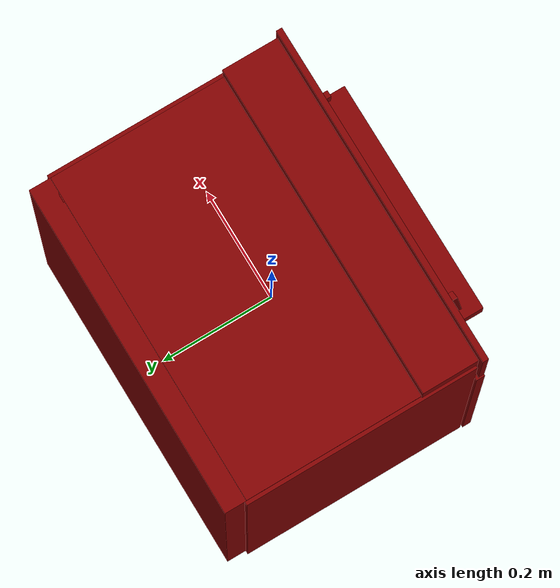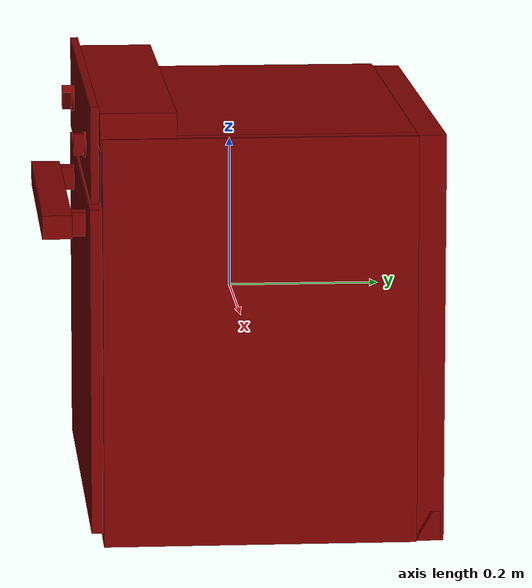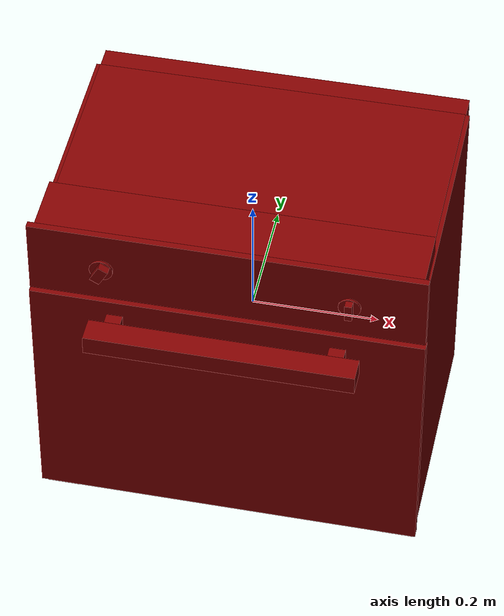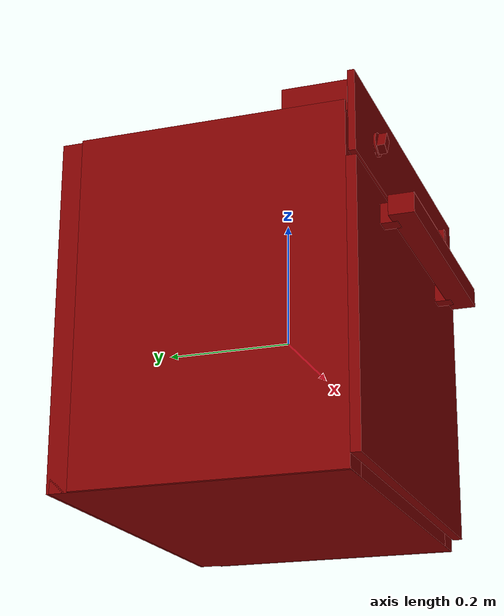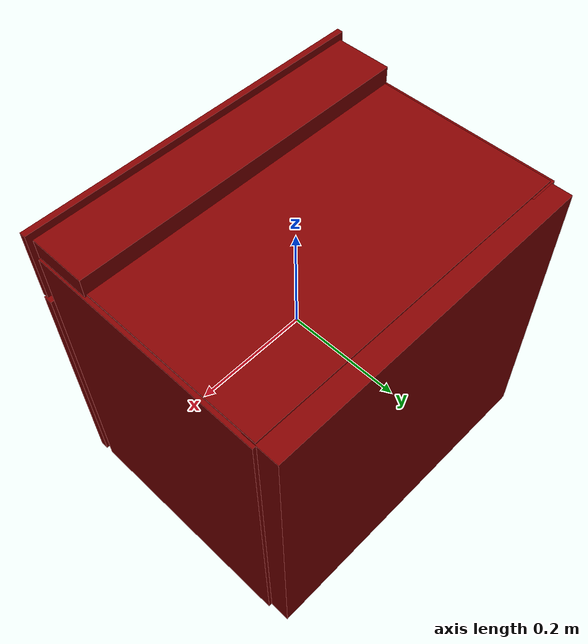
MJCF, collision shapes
<mujoco model="model">
  <compiler angle="radian"/>
  <asset>
    <mesh file="visuals/Body001.obj" name="Body001_vis"/>
    <mesh file="visuals/Door001.obj" name="Door001_vis"/>
    <mesh file="visuals/Door001_Clear.obj" name="Door001_Clear_vis"/>
    <mesh file="visuals/Knob001.obj" name="Knob001_vis"/>
    <mesh file="visuals/Knob002.obj" name="Knob002_vis"/>
    <mesh file="visuals/Shelf001.obj" name="Shelf001_vis"/>
    <texture file="visuals/T_BC001.png" name="Body001_material" type="2d"/>
    <material name="Body001_material" rgba="1 1 1 1.0" texture="Body001_material" shininess="0.4472135901451111" specular="0.3103448502657381"/>
    <texture file="visuals/T_BC001.png" name="Door001_material" type="2d"/>
    <material name="Door001_material" rgba="1 1 1 1.0" texture="Door001_material" shininess="0.4472135901451111" specular="0.3103448502657381"/>
    <texture file="visuals/T_BC001.png" name="Door001_Clear_material" type="2d"/>
    <material name="Door001_Clear_material" rgba="1 1 1 0.7999999523162842" texture="Door001_Clear_material" shininess="0.4472135901451111" specular="0.3103448502657381"/>
    <texture file="visuals/T_BC001.png" name="Knob001_material" type="2d"/>
    <material name="Knob001_material" rgba="1 1 1 1.0" texture="Knob001_material" shininess="0.4472135901451111" specular="0.3103448502657381"/>
    <texture file="visuals/T_BC001.png" name="Knob002_material" type="2d"/>
    <material name="Knob002_material" rgba="1 1 1 1.0" texture="Knob002_material" shininess="0.4472135901451111" specular="0.3103448502657381"/>
    <texture file="visuals/T_BC001.png" name="Shelf001_material" type="2d"/>
    <material name="Shelf001_material" rgba="1 1 1 1.0" texture="Shelf001_material" shininess="0.4472135901451111" specular="0.3103448502657381"/>
  </asset>
  <default>
    <default class="visual">
      <geom conaffinity="0" contype="0" group="1" type="mesh"/>
    </default>
    <default class="collision">
      <geom group="0" rgba="0.5 0 0 0.5"/>
    </default>
    <default class="spawn">
      <geom group="0" rgba="1 1 1 0.5" contype="0" conaffinity="0"/>
      <site group="0" rgba="1 1 1 0.5"/>
    </default>
    <default class="region">
      <geom group="1" conaffinity="0" contype="0" rgba="0 1 0 0"/>
    </default>
  </default>
  <worldbody>
    <body>
      <body name="object">
        <geom mesh="Body001_vis" type="mesh" solimp="0.998 0.998 0.001" solref="0.001 1" density="100" friction="0.95 0.3 0.1" class="visual" material="Body001_material"/>
        <geom class="collision" type="box" pos="-0.0001150821044575423 0.035174883902072906 -0.26660239696502686" size="0.29171276092529297 0.2194117158651352 0.019484931603074074" quat="1.0 0.0 0.0 0.0"/>
        <geom class="collision" type="box" pos="0.0003415074315853417 -0.1378789097070694 0.2592494785785675" size="0.29411524534225464 0.04925039783120155 0.024248898029327393" quat="1.0 0.0 0.0 0.0"/>
        <geom class="collision" type="box" pos="0.2725883424282074 0.019312120974063873 -0.017896898090839386" size="0.02493990957736969 0.20375710725784302 0.26818951964378357" quat="1.0 0.0 0.0 0.0"/>
        <geom class="collision" type="box" pos="-0.0001150821044575423 0.2286190390586853 -0.017896898090839386" size="0.2917129397392273 0.030203869566321373 0.26818957924842834" quat="1.0 0.0 0.0 0.0"/>
        <geom class="collision" type="box" pos="-0.27295947074890137 0.019759636372327805 -0.017896898090839386" size="0.025413034483790398 0.20433248579502106 0.2681896388530731" quat="1.0 0.0 0.0 0.0"/>
        <geom class="collision" type="box" pos="0.0007347097853198647 -0.19475600123405457 0.2309303730726242" size="0.3016512095928192 0.0051789721474051476 0.06286300718784332" quat="1.0 0.0 0.0 0.0"/>
        <geom class="collision" type="box" pos="-0.000563634792342782 0.06301185488700867 0.24423527717590332" size="0.29126429557800293 0.1580100655555725 0.009234687313437462" quat="1.0 0.0 0.0 0.0"/>
        <geom class="collision" type="box" pos="-0.000563634792342782 0.02014992944896221 0.18133759498596191" size="0.29126429557800293 0.20087198913097382 0.05729734152555466" quat="1.0 0.0 0.0 0.0"/>
        <geom class="collision" type="box" pos="-0.2601841986179352 0.019759636372327805 -0.0775279551744461" size="0.018690381199121475 0.20433248579502106 0.007204629946500063" quat="1.0 0.0 0.0 0.0"/>
        <geom class="collision" type="box" pos="0.26071929931640625 0.019759636372327805 -0.0775279551744461" size="0.018690381199121475 0.20433248579502106 0.007204629946500063" quat="1.0 0.0 0.0 0.0"/>
        <body name="Door001">
          <joint axis="1.0 0.0 0.0" pos="-4.627989255823195e-06 -0.19747281074523926 -0.2802807688713074" limited="true" name="Door001_joint" range="0.0 1.15" type="hinge" damping="5" frictionloss="1" armature=".01" stiffness="0.05"/>
          <geom mesh="Door001_vis" type="mesh" solimp="0.998 0.998 0.001" solref="0.001 1" density="100" friction="0.95 0.3 0.1" class="visual" material="Door001_material"/>
          <geom class="collision" type="box" pos="-1.234002411365509e-08 -0.19337597489356995 -0.05289773643016815" size="0.3026793897151947 0.00757393566891551 0.2130080908536911" quat="1.0 0.0 0.0 0.0"/>
          <geom class="collision" type="box" pos="0.0008096892852336168 -0.17589324712753296 -0.06381361931562424" size="0.23558706045150757 0.015448582358658314 0.1573600023984909" quat="1.0 0.0 0.0 0.0"/>
          <geom class="collision" type="box" pos="-0.1706220656633377 -0.21485750377178192 0.11951620131731033" size="0.012437061406672001 0.012890075333416462 0.015612439252436161" quat="1.0 0.0 0.0 0.0"/>
          <geom class="collision" type="box" pos="0.00021028536139056087 -0.23928269743919373 0.12017980217933655" size="0.2072979062795639 0.01943608559668064 0.015612459741532803" quat="1.0 0.0 0.0 0.0"/>
          <geom class="collision" type="box" pos="0.17107003927230835 -0.21485750377178192 0.11951620131731033" size="0.012437081895768642 0.01289011538028717 0.01561247929930687" quat="1.0 0.0 0.0 0.0"/>
          <body name="Door001_Clear">
            <geom mesh="Door001_Clear_vis" type="mesh" solimp="0.998 0.998 0.001" solref="0.001 1" density="100" friction="0.95 0.3 0.1" class="visual" material="Door001_Clear_material"/>
            <geom class="collision" type="box" pos="-0.0001150821044575423 -0.1777002215385437 -0.06398564577102661" size="0.16974835097789764 0.02312706783413887 0.11725851148366928" quat="1.0 0.0 0.0 0.0"/>
          </body>
        </body>
        <body name="Knob001">
          <joint axis="0.0 1.0 0.0" pos="-0.1890895515680313 -0.20617784559726715 0.22815538942813873" limited="true" name="Knob001_joint" range="0.0 5.061454830783556" type="hinge" damping="0.05" armature="0.001"/>
          <geom mesh="Knob001_vis" type="mesh" solimp="0.998 0.998 0.001" solref="0.001 1" density="100" friction="0.95 0.3 0.1" class="visual" material="Knob001_material"/>
          <geom class="collision" type="cylinder" pos="-0.18860962986946106 -0.20188863575458527 0.2270132303237915" size="0.01806890033185482 0.001686516567133367" quat="0.7071067094802856 0.7071068286895752 0.0 0.0"/>
          <geom class="collision" type="box" pos="-0.18892879784107208 -0.21028128266334534 0.22771896421909332" size="0.008250432088971138 0.006144003476947546 0.014450949616730213" quat="0.9671083092689514 -1.6025834825850183e-10 0.2543649971485138 -5.980698714047605e-10"/>
        </body>
        <body name="Knob002">
          <joint axis="0.0 -1.0 0.0" pos="0.18743212521076202 -0.20617778599262238 0.22628185153007507" limited="true" name="Knob002_joint" range="-1.0471975511965976 3.141592653589793" type="hinge" damping="0.05" armature="0.001"/>
          <geom mesh="Knob002_vis" type="mesh" solimp="0.998 0.998 0.001" solref="0.001 1" density="100" friction="0.95 0.3 0.1" class="visual" material="Knob002_material"/>
          <geom class="collision" type="cylinder" pos="0.18736280500888824 -0.20263423025608063 0.2260352522134781" size="0.017057839781045914 0.0015851097414270043" quat="0.7071067094802856 0.7071068286895752 0.0 0.0"/>
          <geom class="collision" type="box" pos="0.1874997466802597 -0.21027356386184692 0.22652864456176758" size="0.005599156953394413 0.00600207457318902 0.01411654893308878" quat="0.9999803304672241 -9.984582977843725e-16 -0.006273726467043161 -8.429349995786595e-10"/>
        </body>
        <body name="Shelf001">
          <joint axis="0.0 -1.0 0.0" pos="-0.000163382530445233 0.001593625289388001 -0.05134783685207367" limited="true" name="Shelf001_joint" range="0.0 0.23" type="slide" damping="1" frictionloss="1" armature=".01" stiffness="0.05"/>
          <geom mesh="Shelf001_vis" type="mesh" solimp="0.998 0.998 0.001" solref="0.001 1" density="100" friction="0.95 0.3 0.1" class="visual" material="Shelf001_material"/>
          <geom class="collision" type="box" pos="0.0007616372313350439 0.016543734818696976 -0.05056009441614151" size="0.22974561154842377 0.11763344705104828 0.004281292669475079" quat="1.0 0.0 0.0 0.0"/>
          <geom class="collision" type="box" pos="-0.23280571401119232 0.016543734818696976 -0.054466597735881805" size="0.003588530234992504 0.11763344705104828 0.008187798783183098" quat="1.0 0.0 0.0 0.0"/>
          <geom class="collision" type="box" pos="-0.23885825276374817 0.016543734818696976 -0.061675503849983215" size="0.008271798491477966 0.11763344705104828 0.003153639379888773" quat="1.0 0.0 0.0 0.0"/>
          <geom class="collision" type="box" pos="0.2393426150083542 0.016543734818696976 -0.061675503849983215" size="0.007913187146186829 0.11763344705104828 0.003153639379888773" quat="1.0 0.0 0.0 0.0"/>
          <geom class="collision" type="box" pos="0.23364870250225067 0.016543734818696976 -0.054466597735881805" size="0.003588530234992504 0.11763344705104828 0.008187798783183098" quat="1.0 0.0 0.0 0.0"/>
          <geom class="collision" type="box" pos="-0.00045907750609330833 0.13004601001739502 -0.03318098187446594" size="0.13294032216072083 0.0013344165636226535 0.001764212385751307" quat="1.0 0.0 0.0 0.0"/>
          <geom class="collision" type="box" pos="0.1314210295677185 0.13004601001739502 -0.041403450071811676" size="0.0010602232068777084 0.0013344165636226535 0.00998667348176241" quat="1.0 0.0 0.0 0.0"/>
          <geom class="collision" type="box" pos="-0.13265986740589142 0.13004601001739502 -0.041403450071811676" size="0.0010602232068777084 0.0013344165636226535 0.00998667348176241" quat="1.0 0.0 0.0 0.0"/>
        </body>
        <geom class="region" name="reg_main" type="box" pos="1.4901161193847656e-08 0.0289364755153656 -2.7567148208618164e-07" size="0.3026808500289917 0.22988644242286682 0.293793648481369"/>
        <geom class="region" name="reg_int" type="box" pos="-0.0011888444423675537 0.00848589837551117 -0.06729349866509438" size="0.24082404375076294 0.19517286121845245 0.17856868728995323"/>
      </body>
    </body>
  </worldbody>
  <actuator>
    <motor name="Door001_joint_actuator" joint="Door001_joint" gear="50"/>
    <motor name="Knob001_joint_actuator" joint="Knob001_joint" gear="50"/>
    <motor name="Knob002_joint_actuator" joint="Knob002_joint" gear="50"/>
    <motor name="Shelf001_joint_actuator" joint="Shelf001_joint" gear="50"/>
  </actuator>
</mujoco>
